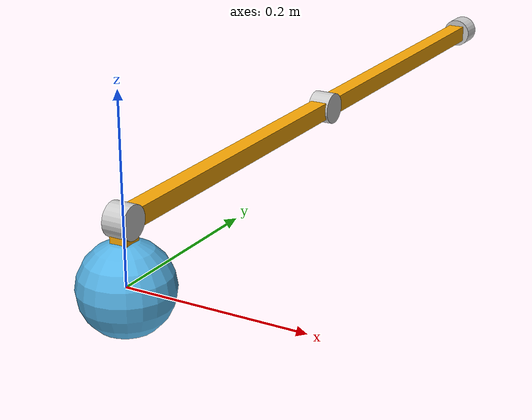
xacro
<?xml version="1.0"?>
<robot name="arm" xmlns:xacro="http://www.ros.org/wiki/xacro">

  <xacro:property name="PI" value="3.14159265359"/>

  <!-- Joints Control in Gazebo -->
  <gazebo>
    <plugin name="gazebo_ros_control" filename="libgazebo_ros_control.so"/>
  </gazebo>

  <!-- Geometrical properties -->
  <xacro:property name="link_side" value="0.02"/>
  <xacro:property name="joint_radius" value="0.018"/>
  <xacro:property name="joint_length" value="0.025"/>
  <xacro:property name="toe_length" value="0.03"/>
  <xacro:property name="foot_length" value="0.04"/>
  <xacro:property name="leg_length" value="0.40"/>
  <xacro:property name="arm_length" value="0.4"/>
  <xacro:property name="finger_length" value="0.0"/>

  <!-- Materials -->
  <material name="orange">
    <color rgba="1.00 0.67 0.02 1.00"/>
  </material>

  <material name="gray">
    <color rgba="0.80 0.80 0.80 1.00"/>
  </material>

  <!-- Generates a box visual/collision/inertial -->
  <xacro:macro name="prism_vci" params="side length mass:=1 *origin">

    <xacro:macro name="prism_geometry">
      <xacro:insert_block name="origin"/>
      <geometry>
        <box size="${side} ${side} ${length}"/>
      </geometry>
    </xacro:macro>

    <visual>
      <xacro:prism_geometry/>
      <material name="orange"/>
    </visual>

    <collision>
      <xacro:prism_geometry/>
    </collision>

    <inertial>
      <xacro:insert_block name="origin"/>
      <mass value="${mass}"/>
      <inertia ixx="${(mass/12)*(side*side+length*length)}"
               iyy="${(mass/12)*(side*side+length*length)}"
               izz="${(mass/6)*(side*side)}"
               ixy="0" ixz="0" iyz="0"/>
    </inertial>

  </xacro:macro>

  <!-- Generates a cylinder visual/collision -->
  <xacro:macro name="cylinder_vc" params="radius length *origin">

    <xacro:macro name="cylinder_geometry">
      <xacro:insert_block name="origin"/>
      <geometry>
        <cylinder length="${length}" radius="${radius}"/>
      </geometry>
    </xacro:macro>

    <visual>
      <xacro:cylinder_geometry/>
      <material name="gray"/>
    </visual>

    <collision>
      <xacro:cylinder_geometry/>
    </collision>

  </xacro:macro>

  <!-- Generates child joint of parent -->
  <xacro:macro name="arm_joint" params="child parent dist:=0 axis">

    <joint name="${parent}_${child}_joint" type="revolute">
      <origin xyz="0 0 ${dist}" rpy="0 0 0"/>
      <parent link="${parent}"/>
      <child link="${child}"/>
      <axis xyz="${axis}"/>
      <limit effort="40.0"
             velocity="1.0"
             lower="${-PI}"
             upper="${PI}"/>
    </joint>

    <!-- Required for ROS control -->
    <transmission name="${parent}_${child}_transmission">
      <type>transmission_interface/SimpleTransmission</type>
      <joint name="${parent}_${child}_joint">
        <hardwareInterface>hardware_interface/EffortJointInterface</hardwareInterface>
      </joint>
      <actuator name="${parent}_${child}_actuator"/>
    </transmission>

    <link name="${parent}">

      <xacro:prism_vci length="${dist}" side="${link_side}">
        <origin xyz="0 0 ${dist/2}" rpy="0 0 0"/>
      </xacro:prism_vci>

      <xacro:cylinder_vc radius="${joint_radius}" length="${joint_length}">

        <xacro:if value="${axis=='0 0 1'}">
          <origin xyz="0 0 ${dist}" rpy="0 0 0"/>
        </xacro:if>

        <xacro:if value="${axis=='1 0 0'}">
          <origin xyz="0 0 ${dist}" rpy="0 ${PI/2} 0"/>
        </xacro:if>

        <xacro:if value="${axis=='0 1 0'}">
          <origin xyz="0 0 ${dist}" rpy="0 0 0"/>
        </xacro:if>

      </xacro:cylinder_vc>

    </link>

    <gazebo reference="${parent}">
      <material>Gazebo/Orange</material>
    </gazebo>

  </xacro:macro>

  <!-- World frame (for Gazebo) -->
  <link name="world"/>

  <joint name="world_ball_joint" type="floating">
    <parent link="world"/>
    <child link="ball"/>
  </joint>

  <link name="ball">
      <visual>
          <geometry>
            <sphere radius="0.05"/>
            <origin xyz="0 0 0" rpy="0 0 0"/>
            <material name="green">
            <color rgba="0 1 0 1"/>
            </material>
          </geometry>
      </visual>
  </link>

  <transmission name="$ball_transmission">
    <type>transmission_interface/SimpleTransmission</type>
    <joint name="ball_joint">
      <hardwareInterface>hardware_interface/EffortJointInterface</hardwareInterface>
    </joint>
    <actuator name="ball_actuator"/>
  </transmission>

  <!-- Arm fixed to world frame  -->
  <joint name="world_foot_joint" type="fixed">
    <parent link="world"/>
    <child link="toe"/>
  </joint>

  <!-- Joints Chain -->

  <joint name="toe_foot_joint" type="revolute">
    <origin xyz="0 0 ${toe_length}" rpy="0 0 ${-PI}"/>
    <parent link="toe"/>
    <child link="foot"/>
    <axis xyz="0 0 -1"/>
    <limit effort="40.0"
           velocity="1.0"
           lower="${-PI}"
           upper="${PI}"/>
  </joint>

  <!-- Required for ROS control -->
  <transmission name="$toe_foot_transmission">
    <type>transmission_interface/SimpleTransmission</type>
    <joint name="toe_foot_joint">
      <hardwareInterface>hardware_interface/EffortJointInterface</hardwareInterface>
    </joint>
    <actuator name="toe_foot_actuator"/>
  </transmission>

  <link name="toe">
      <xacro:prism_vci length="${toe_length}" side="${link_side}">
        <origin xyz="0 0 ${toe_length/2}" rpy="0 0 0"/>
      </xacro:prism_vci>

      <xacro:cylinder_vc radius="${joint_radius}" length="${joint_length}">
          <origin xyz="0 0 ${toe_length}" rpy="0 0 0"/>
    </xacro:cylinder_vc>
  </link>

  <joint name="foot_leg_joint" type="revolute">
    <origin xyz="0 0 ${foot_length}" rpy="${PI/2} 0 0"/>
    <parent link="foot"/>
    <child link="leg"/>
    <axis xyz="-1 0 0"/>
    <limit effort="40.0"
           velocity="1.0"
           lower="${-PI}"
           upper="${PI}"/>
  </joint>

  <!-- Required for ROS control -->
  <transmission name="$foot_leg_transmission">
    <type>transmission_interface/SimpleTransmission</type>
    <joint name="foot_leg_joint">
      <hardwareInterface>hardware_interface/EffortJointInterface</hardwareInterface>
    </joint>
    <actuator name="foot_leg_actuator"/>
  </transmission>

  <link name="foot">
      <xacro:prism_vci length="${foot_length}" side="${link_side}">
        <origin xyz="0 0 ${foot_length/2}" rpy="0 0 0"/>
      </xacro:prism_vci>

      <xacro:cylinder_vc radius="${joint_radius}" length="${joint_length}">
          <origin xyz="0 0 ${foot_length}" rpy="0 ${PI/2} 0"/>
    </xacro:cylinder_vc>
  </link>

  <joint name="leg_arm_joint" type="revolute">
    <origin xyz="0 0 ${leg_length}" rpy="0 0 0"/>
    <parent link="leg"/>
    <child link="arm"/>
    <axis xyz="-1 0 0"/>
    <limit effort="40.0"
           velocity="1.0"
           lower="${-PI}"
           upper="${PI}"/>
  </joint>

  <!-- Required for ROS control -->
  <transmission name="$leg_arm_transmission">
    <type>transmission_interface/SimpleTransmission</type>
    <joint name="leg_arm_joint">
      <hardwareInterface>hardware_interface/EffortJointInterface</hardwareInterface>
    </joint>
    <actuator name="leg_arm_actuator"/>
  </transmission>

  <link name="leg">
      <xacro:prism_vci length="${leg_length}" side="${link_side}">
        <origin xyz="0 0 ${leg_length/2}" rpy="0 0 0"/>
      </xacro:prism_vci>

      <xacro:cylinder_vc radius="${joint_radius}" length="${joint_length}">
          <origin xyz="0 0 ${leg_length}" rpy="0 ${PI/2} 0"/>
    </xacro:cylinder_vc>
  </link>

  <xacro:arm_joint parent="arm" child="finger" axis="0 0 1" dist="${arm_length}"/>

  <!-- End effector -->
  <link name="finger">
    <xacro:prism_vci length="${finger_length}" side="${link_side}">
      <origin xyz="0 0 ${finger_length/2}" rpy="0 0 0"/>
    </xacro:prism_vci>
  </link>

  <gazebo reference="finger">
    <material>Gazebo/Red</material>
  </gazebo>

</robot>
